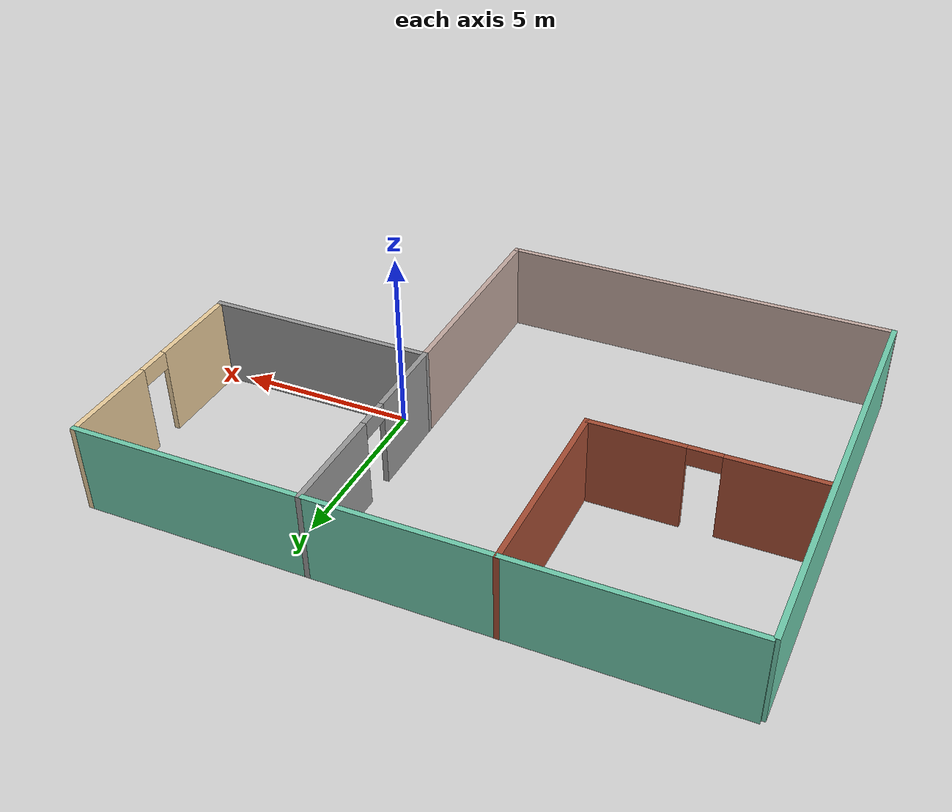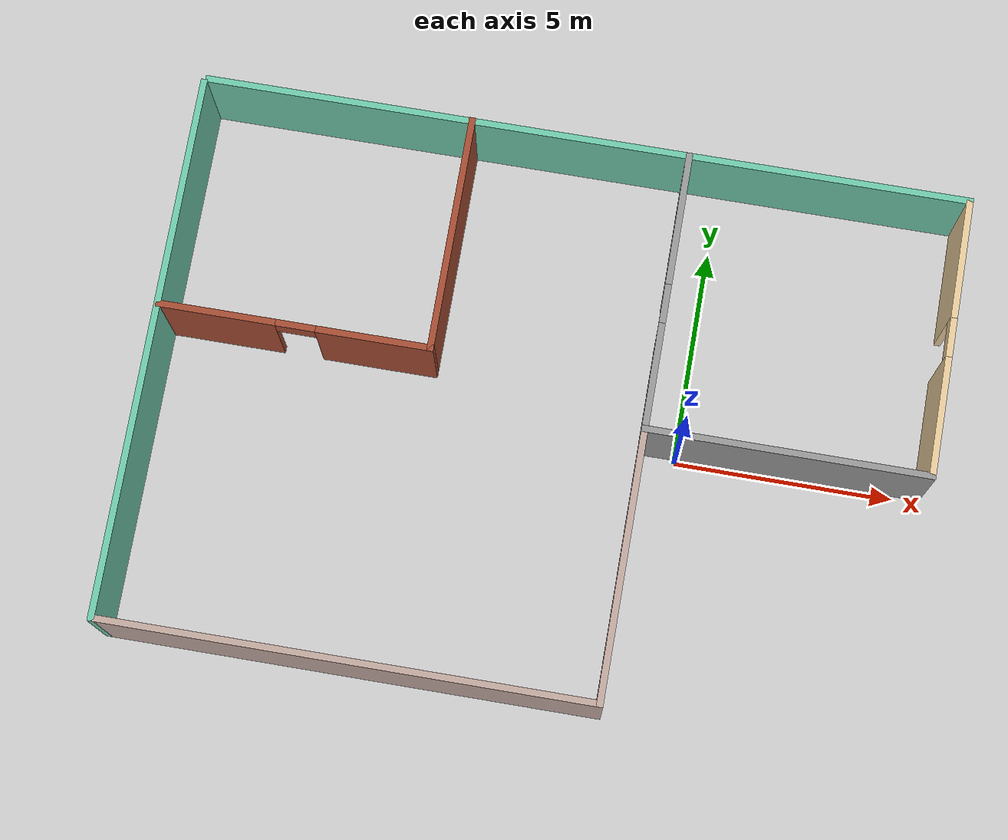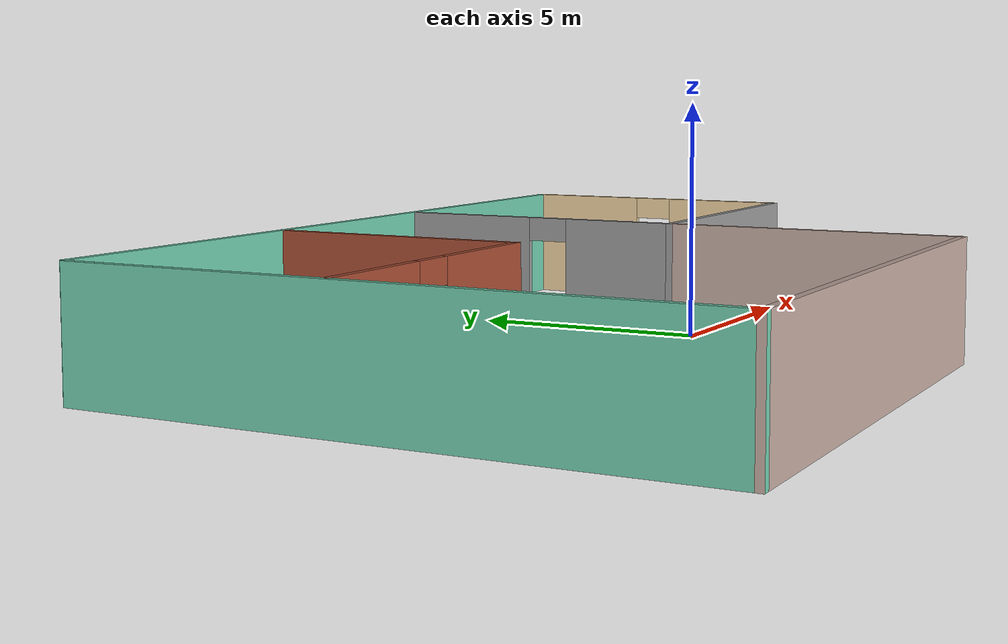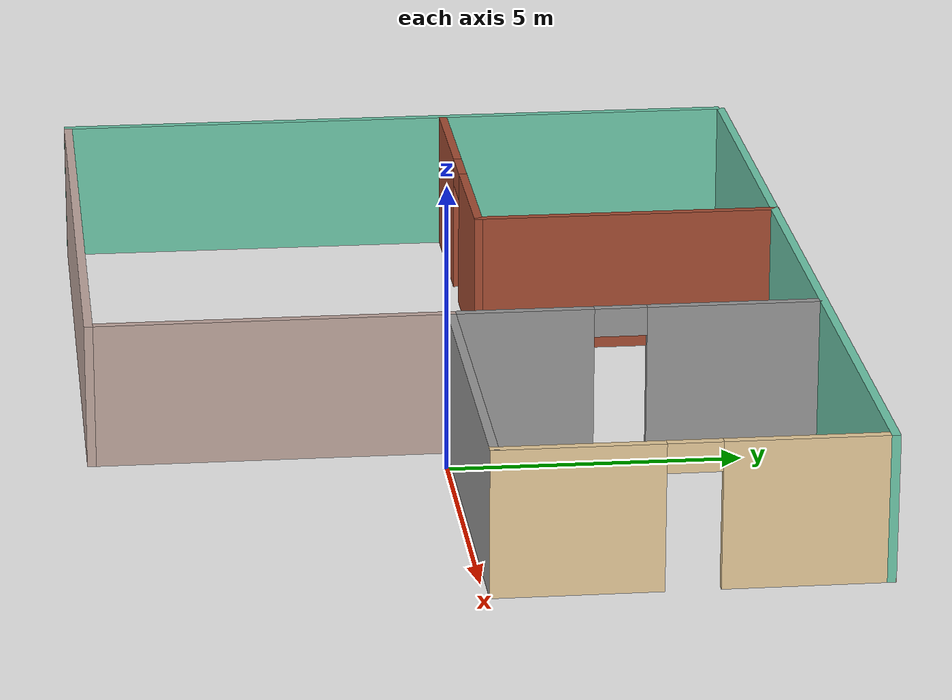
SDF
<?xml version='1.0'?>
<sdf version='1.6'>
  <model name='Green_cafe'>
    <pose frame=''>-3.1834 0.282467 0 0 -0 0</pose>
    <link name='Wall_0'>
      <pose frame=''>8.725 3.04628 0 0 -0 1.5708</pose>
      <visual name='Wall_0_Visual_0'>
        <pose frame=''>-1.85479 0 1.25 0 -0 0</pose>
        <geometry>
          <box>
            <size>2.79042 0.15 2.5</size>
          </box>
        </geometry>
        <material>
          <script>
            <uri>file://media/materials/scripts/gazebo.material</uri>
            <name>Gazebo/Grey</name>
          </script>
          <ambient>0.921569 0.807843 0.615686 1</ambient>
        </material>
        <meta>
          <layer>0</layer>
        </meta>
      </visual>
      <collision name='Wall_0_Collision_0'>
        <geometry>
          <box>
            <size>2.79042 0.15 2.5</size>
          </box>
        </geometry>
        <pose frame=''>-1.85479 0 1.25 0 -0 0</pose>
      </collision>
      <visual name='Wall_0_Visual_1'>
        <pose frame=''>1.84521 0 1.25 0 -0 0</pose>
        <geometry>
          <box>
            <size>2.80958 0.15 2.5</size>
          </box>
        </geometry>
        <material>
          <script>
            <uri>file://media/materials/scripts/gazebo.material</uri>
            <name>Gazebo/Grey</name>
          </script>
          <ambient>0.921569 0.807843 0.615686 1</ambient>
        </material>
        <meta>
          <layer>0</layer>
        </meta>
      </visual>
      <collision name='Wall_0_Collision_1'>
        <geometry>
          <box>
            <size>2.80958 0.15 2.5</size>
          </box>
        </geometry>
        <pose frame=''>1.84521 0 1.25 0 -0 0</pose>
      </collision>
      <visual name='Wall_0_Visual_2'>
        <pose frame=''>-0.009576 0 2.25 0 -0 0</pose>
        <geometry>
          <box>
            <size>0.9 0.15 0.5</size>
          </box>
        </geometry>
        <material>
          <script>
            <uri>file://media/materials/scripts/gazebo.material</uri>
            <name>Gazebo/Grey</name>
          </script>
          <ambient>0.921569 0.807843 0.615686 1</ambient>
        </material>
        <meta>
          <layer>0</layer>
        </meta>
      </visual>
      <collision name='Wall_0_Collision_2'>
        <geometry>
          <box>
            <size>0.9 0.15 0.5</size>
          </box>
        </geometry>
        <pose frame=''>-0.009576 0 2.25 0 -0 0</pose>
      </collision>
    </link>
    <link name='Wall_1'>
      <collision name='Wall_1_Collision'>
        <geometry>
          <box>
            <size>17.5 0.15 2.5</size>
          </box>
        </geometry>
        <pose frame=''>0 0 1.25 0 -0 0</pose>
      </collision>
      <visual name='Wall_1_Visual'>
        <pose frame=''>0 0 1.25 0 -0 0</pose>
        <geometry>
          <box>
            <size>17.5 0.15 2.5</size>
          </box>
        </geometry>
        <material>
          <script>
            <uri>file://media/materials/scripts/gazebo.material</uri>
            <name>Gazebo/Grey</name>
          </script>
          <ambient>0.435294 0.796078 0.67451 1</ambient>
        </material>
        <meta>
          <layer>0</layer>
        </meta>
      </visual>
      <pose frame=''>0.05 6.22128 0 0 -0 3.14159</pose>
    </link>
    <link name='Wall_10'>
      <collision name='Wall_10_Collision'>
        <geometry>
          <box>
            <size>6.5 0.15 2.5</size>
          </box>
        </geometry>
        <pose frame=''>0 0 1.25 0 -0 0</pose>
      </collision>
      <visual name='Wall_10_Visual'>
        <pose frame=''>0 0 1.25 0 -0 0</pose>
        <geometry>
          <box>
            <size>6.5 0.15 2.5</size>
          </box>
        </geometry>
        <material>
          <script>
            <uri>file://media/materials/scripts/gazebo.material</uri>
            <name>Gazebo/Grey</name>
          </script>
          <ambient>1 1 1 1</ambient>
        </material>
        <meta>
          <layer>0</layer>
        </meta>
      </visual>
      <pose frame=''>5.55 -0.128723 0 0 -0 3.14159</pose>
    </link>
    <link name='Wall_11'>
      <collision name='Wall_11_Collision'>
        <geometry>
          <box>
            <size>6.25 0.15 2.5</size>
          </box>
        </geometry>
        <pose frame=''>0 0 1.25 0 -0 0</pose>
      </collision>
      <visual name='Wall_11_Visual'>
        <pose frame=''>0 0 1.25 0 -0 0</pose>
        <geometry>
          <box>
            <size>6.25 0.15 2.5</size>
          </box>
        </geometry>
        <material>
          <script>
            <uri>file://media/materials/scripts/gazebo.material</uri>
            <name>Gazebo/Grey</name>
          </script>
          <ambient>0.760784 0.662745 0.627451 1</ambient>
        </material>
        <meta>
          <layer>0</layer>
        </meta>
      </visual>
      <pose frame=''>2.375 -3.17872 0 0 0 -1.5708</pose>
    </link>
    <link name='Wall_14'>
      <collision name='Wall_14_Collision'>
        <geometry>
          <box>
            <size>11.25 0.15 2.5</size>
          </box>
        </geometry>
        <pose frame=''>0 0 1.25 0 -0 0</pose>
      </collision>
      <visual name='Wall_14_Visual'>
        <pose frame=''>0 0 1.25 0 -0 0</pose>
        <geometry>
          <box>
            <size>11.25 0.15 2.5</size>
          </box>
        </geometry>
        <material>
          <script>
            <uri>file://media/materials/scripts/gazebo.material</uri>
            <name>Gazebo/Grey</name>
          </script>
          <ambient>0.760784 0.662745 0.627451 1</ambient>
        </material>
        <meta>
          <layer>0</layer>
        </meta>
      </visual>
      <pose frame=''>-3.175 -6.22872 0 0 -0 3.14159</pose>
    </link>
    <link name='Wall_15'>
      <collision name='Wall_15_Collision'>
        <geometry>
          <box>
            <size>12.5 0.15 2.5</size>
          </box>
        </geometry>
        <pose frame=''>0 0 1.25 0 -0 0</pose>
      </collision>
      <visual name='Wall_15_Visual'>
        <pose frame=''>0 0 1.25 0 -0 0</pose>
        <geometry>
          <box>
            <size>12.5 0.15 2.5</size>
          </box>
        </geometry>
        <material>
          <script>
            <uri>file://media/materials/scripts/gazebo.material</uri>
            <name>Gazebo/Grey</name>
          </script>
          <ambient>0.435294 0.796078 0.67451 1</ambient>
        </material>
        <meta>
          <layer>0</layer>
        </meta>
      </visual>
      <pose frame=''>-8.725 -0.053723 0 0 -0 1.5708</pose>
    </link>
    <link name='Wall_17'>
      <pose frame=''>2.375 3.04628 0 0 -0 1.5708</pose>
      <visual name='Wall_17_Visual_0'>
        <pose frame=''>-2.00109 0 1.25 0 -0 0</pose>
        <geometry>
          <box>
            <size>2.49782 0.15 2.5</size>
          </box>
        </geometry>
        <material>
          <script>
            <uri>file://media/materials/scripts/gazebo.material</uri>
            <name>Gazebo/Grey</name>
          </script>
          <ambient>1 1 1 1</ambient>
        </material>
        <meta>
          <layer>0</layer>
        </meta>
      </visual>
      <collision name='Wall_17_Collision_0'>
        <geometry>
          <box>
            <size>2.49782 0.15 2.5</size>
          </box>
        </geometry>
        <pose frame=''>-2.00109 0 1.25 0 -0 0</pose>
      </collision>
      <visual name='Wall_17_Visual_1'>
        <pose frame=''>1.69891 0 1.25 0 -0 0</pose>
        <geometry>
          <box>
            <size>3.10218 0.15 2.5</size>
          </box>
        </geometry>
        <material>
          <script>
            <uri>file://media/materials/scripts/gazebo.material</uri>
            <name>Gazebo/Grey</name>
          </script>
          <ambient>1 1 1 1</ambient>
        </material>
        <meta>
          <layer>0</layer>
        </meta>
      </visual>
      <collision name='Wall_17_Collision_1'>
        <geometry>
          <box>
            <size>3.10218 0.15 2.5</size>
          </box>
        </geometry>
        <pose frame=''>1.69891 0 1.25 0 -0 0</pose>
      </collision>
      <visual name='Wall_17_Visual_2'>
        <pose frame=''>-0.302178 0 2.25 0 -0 0</pose>
        <geometry>
          <box>
            <size>0.9 0.15 0.5</size>
          </box>
        </geometry>
        <material>
          <script>
            <uri>file://media/materials/scripts/gazebo.material</uri>
            <name>Gazebo/Grey</name>
          </script>
          <ambient>1 1 1 1</ambient>
        </material>
        <meta>
          <layer>0</layer>
        </meta>
      </visual>
      <collision name='Wall_17_Collision_2'>
        <geometry>
          <box>
            <size>0.9 0.15 0.5</size>
          </box>
        </geometry>
        <pose frame=''>-0.302178 0 2.25 0 -0 0</pose>
      </collision>
    </link>
    <link name='Wall_19'>
      <collision name='Wall_19_Collision'>
        <geometry>
          <box>
            <size>5.5 0.15 2.5</size>
          </box>
        </geometry>
        <pose frame=''>0 0 1.25 0 -0 0</pose>
      </collision>
      <visual name='Wall_19_Visual'>
        <pose frame=''>0 0 1.25 0 -0 0</pose>
        <geometry>
          <box>
            <size>5.5 0.15 2.5</size>
          </box>
        </geometry>
        <material>
          <script>
            <uri>file://media/materials/scripts/gazebo.material</uri>
            <name>Gazebo/Bricks</name>
          </script>
          <ambient>1 1 1 1</ambient>
        </material>
        <meta>
          <layer>0</layer>
        </meta>
      </visual>
      <pose frame=''>-2.58008 3.55372 0 0 0 -1.5708</pose>
    </link>
    <link name='Wall_20'>
      <pose frame=''>-5.63008 0.878724 0 0 -0 3.14159</pose>
      <visual name='Wall_20_Visual_0'>
        <pose frame=''>-1.79629 0 1.25 0 -0 0</pose>
        <geometry>
          <box>
            <size>2.65742 0.15 2.5</size>
          </box>
        </geometry>
        <material>
          <script>
            <uri>file://media/materials/scripts/gazebo.material</uri>
            <name>Gazebo/Bricks</name>
          </script>
          <ambient>1 1 1 1</ambient>
        </material>
        <meta>
          <layer>0</layer>
        </meta>
      </visual>
      <collision name='Wall_20_Collision_0'>
        <geometry>
          <box>
            <size>2.65742 0.15 2.5</size>
          </box>
        </geometry>
        <pose frame=''>-1.79629 0 1.25 0 -0 0</pose>
      </collision>
      <visual name='Wall_20_Visual_1'>
        <pose frame=''>1.77871 0 1.25 0 -0 0</pose>
        <geometry>
          <box>
            <size>2.69258 0.15 2.5</size>
          </box>
        </geometry>
        <material>
          <script>
            <uri>file://media/materials/scripts/gazebo.material</uri>
            <name>Gazebo/Bricks</name>
          </script>
          <ambient>1 1 1 1</ambient>
        </material>
        <meta>
          <layer>0</layer>
        </meta>
      </visual>
      <collision name='Wall_20_Collision_1'>
        <geometry>
          <box>
            <size>2.69258 0.15 2.5</size>
          </box>
        </geometry>
        <pose frame=''>1.77871 0 1.25 0 -0 0</pose>
      </collision>
      <visual name='Wall_20_Visual_2'>
        <pose frame=''>-0.017577 0 2.25 0 -0 0</pose>
        <geometry>
          <box>
            <size>0.9 0.15 0.5</size>
          </box>
        </geometry>
        <material>
          <script>
            <uri>file://media/materials/scripts/gazebo.material</uri>
            <name>Gazebo/Bricks</name>
          </script>
          <ambient>1 1 1 1</ambient>
        </material>
        <meta>
          <layer>0</layer>
        </meta>
      </visual>
      <collision name='Wall_20_Collision_2'>
        <geometry>
          <box>
            <size>0.9 0.15 0.5</size>
          </box>
        </geometry>
        <pose frame=''>-0.017577 0 2.25 0 -0 0</pose>
      </collision>
    </link>
    <static>1</static>
  </model>
</sdf>
